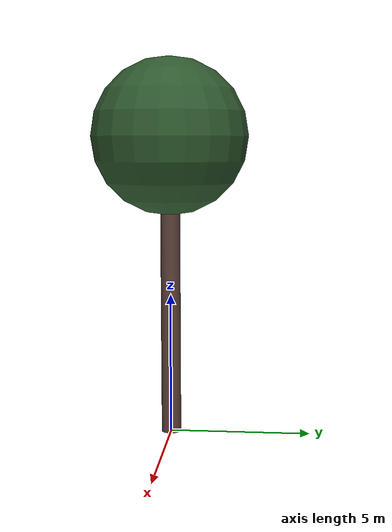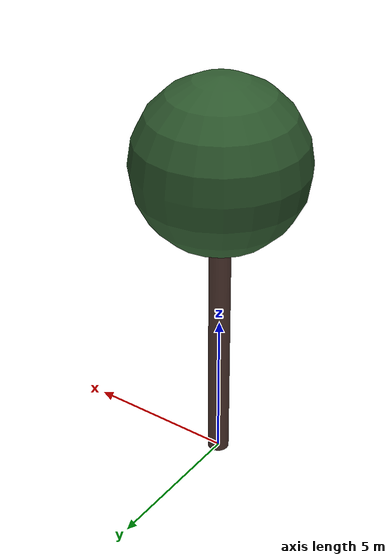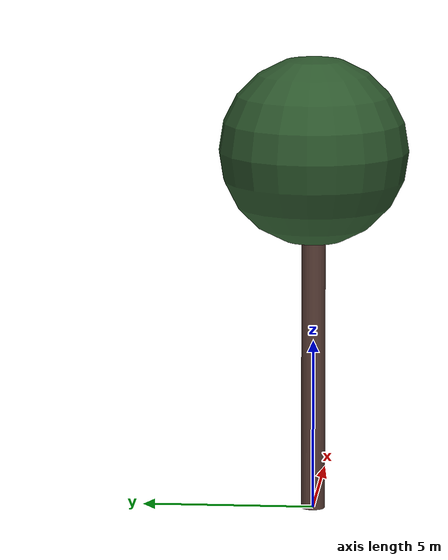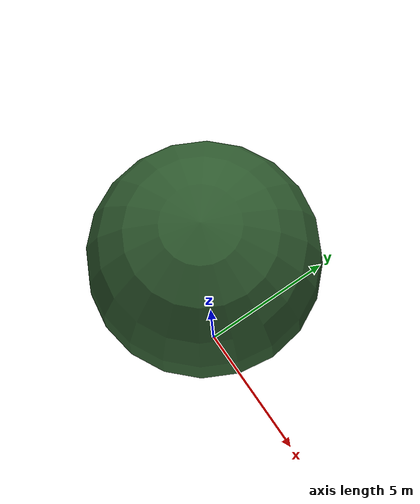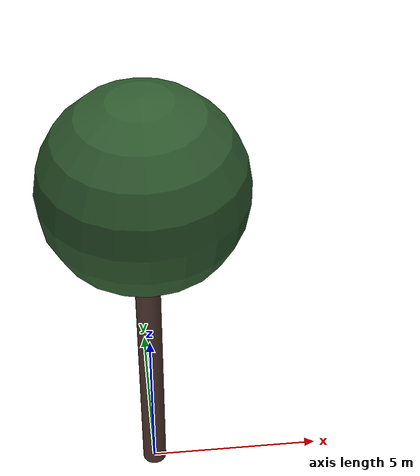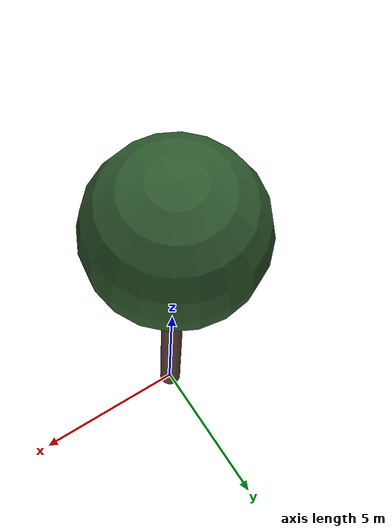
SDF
<?xml version="1.0" ?>
<sdf version="1.10">
  <model name="pin_parasol_02">
    <static>true</static>

    <!-- Tronc -->
    <link name="trunk">
      <pose>0 0 4.894951380772879 0 0 0</pose>
      <visual name="trunk_visual">
        <geometry>
          <cylinder>
            <radius>0.34788990793239827</radius>
            <length>9.789902761545758</length>
          </cylinder>
        </geometry>
        <material>
          <ambient>0.36 0.25 0.22 1</ambient>
          <diffuse>0.36 0.25 0.22 1</diffuse>
          <specular>0.1 0.1 0.1 1</specular>
        </material>
      </visual>
      <collision name="trunk_collision">
        <geometry>
          <cylinder>
            <radius>0.34788990793239827</radius>
            <length>9.789902761545758</length>
          </cylinder>
        </geometry>
      </collision>
    </link>

    <!-- Feuillage -->
    <link name="crown">
      <pose>0 0 10.617383901625535 0 0 0</pose>
      <visual name="crown_visual">
        <geometry>
          <sphere>
              <radius>2.7582704669325944</radius>
            </sphere>
        </geometry>
        <material>
          <ambient>0.18 0.35 0.18 1</ambient>
          <diffuse>0.18 0.35 0.18 1</diffuse>
          <specular>0.1 0.1 0.1 1</specular>
        </material>
      </visual>
      <collision name="crown_collision">
        <geometry>
          <sphere>
            <radius>2.2066163735460758</radius>
          </sphere>
        </geometry>
      </collision>
    </link>

    <!-- Joint tronc-feuillage -->
    <joint name="trunk_crown_joint" type="fixed">
      <parent>trunk</parent>
      <child>crown</child>
    </joint>

  </model>
</sdf>
